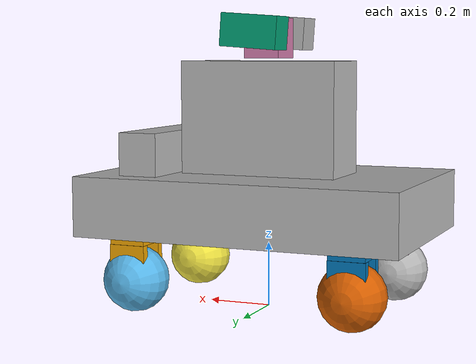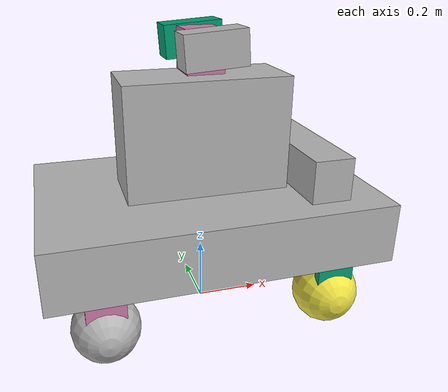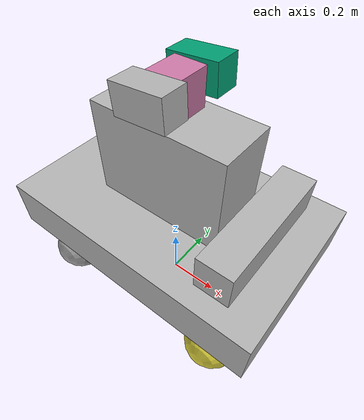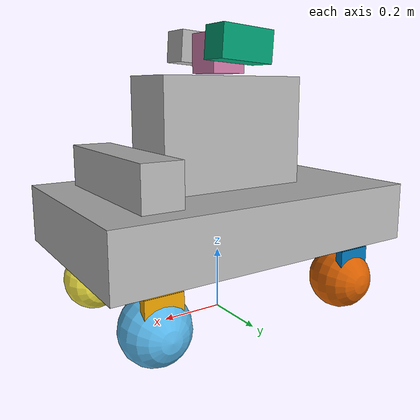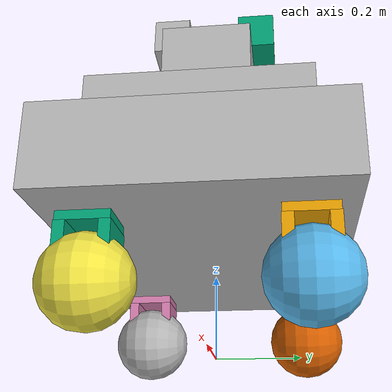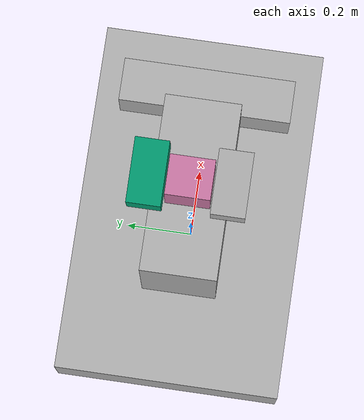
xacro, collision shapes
<?xml version="1.0" ?>
<robot xmlns:xacro="http://www.ros.org/wiki/xacro" name="marinero">

  <xacro:include filename="materials.xacro" />
  <xacro:include filename="imu.xacro" />
  <xacro:include filename="lidar.xacro" />
  <xacro:include filename="marinero_camera.xacro" />
  <xacro:include filename="SUNELL_camera.xacro" />
  <xacro:include filename="robot_core_4WIS4WID.xacro" />

</robot>

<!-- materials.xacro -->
<robot xmlns:xacro="http://www.ros.org/wiki/xacro">

    <xacro:property name="wheel_length" value="0.04" />
    <xacro:property name="wheel_radius" value="0.1016" />
    <xacro:property name="wheel_mass" value="1.469" />
    <xacro:property name="axle_length" value="0.1234" />
    <xacro:property name="axle_radius" value="0.035" />
    <xacro:property name="axle_mass" value="1.5" />

    <material name="white">
        <color rgba="1.0 1.0 1.0 1.0"/>
    </material>

    <material name="grey">
        <color rgba="0.5 0.5 0.5 1.0"/>
    </material>

    <material name="red">
        <color rgba="1.0 0.0 0.0 0.8"/>
    </material>

    <material name="black">
        <color rgba="0.0 0.0 0.0 1.0"/>
    </material>

    <material name="dark">
        <color rgba="0.3 0.3 0.3 1.0"/>
    </material>

    <material name="light_black">
        <color rgba="0.4 0.4 0.4 1.0"/>
    </material>

    <material name="sky_blue">
        <color rgba="${135/255} ${206/255} ${235/255} 1.0"/>
    </material>

    <xacro:macro name="inertial_sphere" params="mass radius *origin">
        <inertial>
            <xacro:insert_block name="origin"/>
            <mass value="${mass}" />
            <inertia ixx="${(2/5) * mass * (radius*radius)}" ixy="0.0" ixz="0.0"
                    iyy="${(2/5) * mass * (radius*radius)}" iyz="0.0"
                    izz="${(2/5) * mass * (radius*radius)}" />
        </inertial>
    </xacro:macro>

    <xacro:macro name="inertial_box" params="mass x y z *origin">
        <inertial>
            <xacro:insert_block name="origin"/>
            <mass value="${mass}" />
            <inertia ixx="${(1/12) * mass * (y*y+z*z)}" ixy="0.0" ixz="0.0"
                    iyy="${(1/12) * mass * (x*x+z*z)}" iyz="0.0"
                    izz="${(1/12) * mass * (x*x+y*y)}" />
        </inertial>
    </xacro:macro>

    <xacro:macro name="inertial_cylinder" params="mass length radius *origin">
        <inertial>
            <xacro:insert_block name="origin"/>
            <mass value="${mass}" />
            <inertia ixx="${(1/12) * mass * (3*radius*radius + length*length)}" ixy="0.0" ixz="0.0"
                    iyy="${(1/12) * mass * (3*radius*radius + length*length)}" iyz="0.0"
                    izz="${(1/2) * mass * (radius*radius)}" />
        </inertial>
    </xacro:macro>

</robot>

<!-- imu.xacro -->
<robot xmlns:xacro="http://www.ros.org/wiki/xacro" name="imu">

    <joint name="imu_joint" type="fixed">
        <parent link="base_link"/>
        <child link="imu_link"/>
        <origin xyz="0 0 0.3" rpy="0 0 0"/>
    </joint>

    <link name="imu_link">
        <visual>
            <origin xyz="0.0 0.0 0.0" rpy="0.0 0.0 0.0"/>
            <geometry>
                <box size="0.1 0.1 0.02" />
            </geometry>
            <material name="grey"/>
        </visual>

        <collision>
            <origin xyz="0.0 0.0 0.0" rpy="0.0 0.0 0.0"/>
            <geometry>
                <box size="0.2 0.2 0.02" />
            </geometry>
        </collision>
    </link>

    <gazebo reference="imu_link">
        <gravity>true</gravity>
        <sensor name="imu_sensor" type="imu">
            <always_on>true</always_on>
            <update_rate>100</update_rate>
            <visualize>true</visualize>
            <imu>
                <angular_velocity>
                    <x>
                    <noise type="gaussian">
                        <mean>0.0</mean>
                        <stddev>0.0001</stddev>
                        <bias_mean>0.0</bias_mean>
                        <bias_stddev>0.0</bias_stddev>
                    </noise>
                    </x>
                    <y>
                    <noise type="gaussian">
                        <mean>0.0</mean>
                        <stddev>0.0001</stddev>
                        <bias_mean>0.0</bias_mean>
                        <bias_stddev>0.0</bias_stddev>
                    </noise>
                    </y>
                    <z>
                    <noise type="gaussian">
                        <mean>0.0</mean>
                        <stddev>0.0001</stddev>
                        <bias_mean>0.0</bias_mean>
                        <bias_stddev>0.0</bias_stddev>
                    </noise>
                    </z>
                </angular_velocity>
                <linear_acceleration>
                    <x>
                    <noise type="gaussian">
                        <mean>0.0</mean>
                        <stddev>0.0001</stddev>
                        <bias_mean>0.0</bias_mean>
                        <bias_stddev>0.0</bias_stddev>
                    </noise>
                    </x>
                    <y>
                    <noise type="gaussian">
                        <mean>0.0</mean>
                        <stddev>0.0001</stddev>
                        <bias_mean>0.0</bias_mean>
                        <bias_stddev>0.0</bias_stddev>
                    </noise>
                    </y>
                    <z>
                    <noise type="gaussian">
                        <mean>0.0</mean>
                        <stddev>0.0001</stddev>
                        <bias_mean>0.0</bias_mean>
                        <bias_stddev>0.0</bias_stddev>
                    </noise>
                    </z>
                </linear_acceleration>
            </imu>

            <plugin filename="libgazebo_ros_imu_sensor.so" name="imu_plugin">
                <ros>
                    <remapping>~/out:=/marinero/imu_sensor</remapping>
                </ros>
                <body_name>base_link</body_name>
                <gaussian_noise>0.005</gaussian_noise>
                <xyz_offset>0 0 0</xyz_offset>
                <rpy_offset>0 0 0</rpy_offset>
                <frame_name>imu_link</frame_name>
                <initial_orientation_as_reference>false</initial_orientation_as_reference>
            </plugin>
            <pose>0 0 0 0 0 0</pose>
        </sensor>
    </gazebo>

    <joint name="gps_joint" type="fixed">
        <parent link="base_link"/>
        <child link="gps_link"/>
        <origin xyz="0 0 0.32" rpy="0 0 0"/>
    </joint>

    <link name="gps_link">
        <visual>
            <origin xyz="0.0 0.0 0.0" rpy="0.0 0.0 0.0"/>
            <geometry>
                <box size="0.1 0.1 0.02" />
            </geometry>
            <material name="white"/>
        </visual>

        <collision>
            <origin xyz="0.0 0.0 0.0" rpy="0.0 0.0 0.0"/>
            <geometry>
                <box size="0.2 0.2 0.02" />
            </geometry>
        </collision>
    </link>

    <gazebo reference="gps_link">
        <sensor name="gps_sensor" type="gps">
            <always_on>true</always_on>
            <update_rate>10</update_rate>
            <plugin name="my_gps_plugin" filename="libgazebo_ros_gps_sensor.so">
                <ros>
                    <remapping>~/out:=/marinero/gps_sensor</remapping>
                </ros>
            </plugin>
        </sensor>
    </gazebo>

</robot>

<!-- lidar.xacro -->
<robot xmlns:xacro="http://www.ros.org/wiki/xacro">

    <xacro:property name="lidar_length" value="0.05" />
    <xacro:property name="lidar_radius" value="0.05" />

    <!-- FRONT LIDAR DESCRIPTION -->
    <joint name="front_lidar_joint" type="fixed">
        <origin xyz="0.455 0.0 0.38" rpy="0.0 0.0 0.0" />
        <parent link="base_link"/>
        <child link="front_lidar_link"/>
    </joint>

    <link name="front_lidar_link"></link>

    <joint name="front_lidar_2D_joint" type="fixed">
        <origin xyz="0.0 0.0 0.0" rpy="0.0 0.0 0.0"/>
        <parent link="front_lidar_link"/>
        <child link="front_lidar_2D_link"/>
    </joint>

    <link name="front_lidar_2D_link"></link>

    <joint name="front_lidar_3D_joint" type="fixed">
        <origin xyz="0.0 0.0 0.0" rpy="0.0 0.0 0.0"/>
        <parent link="front_lidar_link"/>
        <child link="front_lidar_3D_link"/>
    </joint>

    <link name="front_lidar_3D_link"></link>

    <!-- REAR LIDAR DESCRIPTION -->
    <joint name="rear_lidar_joint" type="fixed">
        <origin xyz="-0.455 0.0 0.38" rpy="0 0 ${pi}" />
        <parent link="base_link"/>
        <child link="rear_lidar_link"/>
    </joint>

    <link name="rear_lidar_link"></link>

    <joint name="rear_lidar_2D_joint" type="fixed">
        <origin xyz="0.0 0.0 0.0" rpy="0.0 0.0 0.0"/>
        <parent link="rear_lidar_link"/>
        <child link="rear_lidar_2D_link"/>
    </joint>

    <link name="rear_lidar_2D_link"></link>

    <joint name="rear_lidar_3D_joint" type="fixed">
        <origin xyz="0.0 0.0 0.0" rpy="0.0 0.0 0.0"/>
        <parent link="rear_lidar_link"/>
        <child link="rear_lidar_3D_link"/>
    </joint>

    <link name="rear_lidar_3D_link"></link>

    <!-- FRONT 3D LIDAR -->

    <gazebo reference="front_lidar_3D_link">
        <sensor name="front_3D_lidar" type="gpu_ray">
            <pose>0 0 0 0 0 0</pose>
            <update_rate>10.0</update_rate>
            <visualize>false</visualize>
            <ray>
                <scan>
                    <horizontal>
                        <samples>360</samples>
                        <resolution>1.0</resolution>
                        <min_angle>${-pi/2.1}</min_angle>
                        <max_angle>${pi/2.1}</max_angle>
                    </horizontal>
                    <vertical>
                        <samples>180</samples>
                        <resolution>1.0</resolution>
                        <min_angle>${-pi/16}</min_angle>
                        <max_angle>${pi/2}</max_angle>
                    </vertical>
                </scan>
                <range>
                    <min>0.25</min>
                    <max>10.0</max>
                    <resolution>0.001</resolution>
                </range>
            </ray>
            <plugin name="front_laser_3D_plugin" filename="libgazebo_ros_ray_sensor.so">
                <ros>
                    <remapping>~/out:=/lidar_3D/front_scan</remapping>
                </ros>
                <update_rate>10.0</update_rate>
                <output_type>sensor_msgs/PointCloud2</output_type>
                <frame_name>front_lidar_3D_link</frame_name>
            </plugin>
        </sensor>
    </gazebo>

    <!-- >REAR 3D LIDAR -->

    <!-- FRONT 2D LIDAR -->

    <gazebo reference="front_lidar_2D_link">
        <sensor name="front_2D_lidar" type="gpu_ray">
            <pose> 0 0 0 0 0 0 </pose>
            <update_rate>10.0</update_rate>
            <visualize>false</visualize>
            <ray>
                <scan>
                    <horizontal>
                        <samples>720</samples>
                        <resolution>1</resolution>
                        <min_angle>-1.57</min_angle>
                        <max_angle>1.57</max_angle>
                    </horizontal>
                </scan>
                <range>
                    <min>0.25</min>
                    <max>10</max>
                    <resolution>0.01</resolution>
                </range>
            </ray>
            <plugin name="front_laser_2D_plugin" filename="libgazebo_ros_ray_sensor.so">
                <ros>
                    <remapping>~/out:=/front_scan</remapping>
                </ros>
                <update_rate>10.0</update_rate>
                <output_type>sensor_msgs/LaserScan</output_type>
                <frame_name>front_lidar_2D_link</frame_name>
            </plugin>
        </sensor>
    </gazebo>

    <!-- REAR 2D LIDAR -->

    <gazebo reference="rear_lidar_2D_link">
        <sensor name="rear_2D_lidar" type="gpu_ray">
            <pose> 0 0 0 0 0 0 </pose>
            <update_rate>10.0</update_rate>
            <visualize>false</visualize>
            <ray>
                <scan>
                    <horizontal>
                        <samples>720</samples>
                        <resolution>1</resolution>
                        <min_angle>-1.57</min_angle>
                        <max_angle>1.57</max_angle>
                    </horizontal>
                </scan>
                <range>
                    <min>0.25</min>
                    <max>10</max>
                    <resolution>0.01</resolution>
                </range>
            </ray>
            <plugin name="rear_laser_2D_plugin" filename="libgazebo_ros_ray_sensor.so">
                <ros>
                    <remapping>~/out:=/rear_scan</remapping>
                </ros>
                <update_rate>10.0</update_rate>
                <output_type>sensor_msgs/LaserScan</output_type>
                <frame_name>rear_lidar_2D_link</frame_name>
            </plugin>
        </sensor>
    </gazebo>

</robot>

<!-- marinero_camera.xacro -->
<robot xmlns:xacro="http://www.ros.org/wiki/xacro" name="camera">

    <!-- FRONT CAMERA -->

    <joint name="front_camera_base_joint" type="fixed">
        <origin xyz="0.502 0 0.069825" rpy="0 0 0" />
        <parent link="chassis" />
        <child link="front_camera_link" />
    </joint>

    <link name="front_camera_link"></link>

    <joint name="front_camera_center" type="fixed">
        <origin xyz="0 0 0" rpy="0 0 0"/>
        <parent link="front_camera_link"/>
        <child link="front_camera_center_link"/>
    </joint>

    <link name="front_camera_center_link"></link>

    <joint name="front_camera_depth_joint" type="fixed">
        <origin xyz="0 0 0" rpy="-${pi/2} 0 -${pi/2}"/>
        <parent link="front_camera_center_link"/>
        <child link="front_camera_depth_frame"/>
    </joint>

    <link name="front_camera_depth_frame"></link>

    <!-- REAR CAMERA -->

    <joint name="rear_camera_joint" type="fixed">
        <origin xyz="-0.502 0 0.069825" rpy="0 0 ${pi}" />
        <parent link="chassis" />
        <child link="rear_camera_link" />
    </joint>

    <link name="rear_camera_link"></link>

    <joint name="rear_camera_center" type="fixed">
        <origin xyz="0 0 0" rpy="0 0 0"/>
        <parent link="rear_camera_link"/>
        <child link="rear_camera_center_link"/>
    </joint>

    <link name="rear_camera_center_link"></link>

    <joint name="rear_camera_depth_joint" type="fixed">
        <origin xyz="0 0 0" rpy="-${pi/2} 0 -${pi/2}"/>
        <parent link="rear_camera_center_link"/>
        <child link="rear_camera_depth_frame"/>
    </joint>

    <link name="rear_camera_depth_frame"></link>

    <!-- GAZEBO PLUGINS -->

    <gazebo reference="front_camera_center_link">
        <sensor name="front_depth_camera" type="camera">
            <update_rate>20</update_rate>
            <visualize>false</visualize>
            <camera name="front_cam">
                <horizontal_fov>1.3962634</horizontal_fov>
                <image>
                    <width>640</width>
                    <height>480</height>
                    <format>B8G8R8</format>
                </image>
                <clip>
                    <near>0.1</near>
                    <far>20</far>
                </clip>
            </camera>
            <plugin name="front_camera_controller" filename="libgazebo_ros_camera.so">
                <frame_name>front_camera_depth_frame</frame_name>
                <imageTopicName>camera/image_front</imageTopicName>
                <min_depth>0.1</min_depth>
                <max_depth>20</max_depth>
            </plugin>
        </sensor>
    </gazebo>

    <gazebo reference="rear_camera_center_link">
        <sensor name="rear_depth_camera" type="camera">
            <update_rate>20</update_rate>
            <visualize>false</visualize>
            <camera name="rear_cam">
                <horizontal_fov>1.3962634</horizontal_fov>
                <image>
                    <width>640</width>
                    <height>480</height>
                    <format>B8G8R8</format>
                </image>
                <clip>
                    <near>0.1</near>
                    <far>20</far>
                </clip>
            </camera>
            <plugin name="rear_camera_controller" filename="libgazebo_ros_camera.so">
                <frame_name>rear_camera_depth_frame</frame_name>
                <imageTopicName>camera/image_rear</imageTopicName>
                <min_depth>0.1</min_depth>
                <max_depth>20</max_depth>
            </plugin>
        </sensor>
    </gazebo>

</robot>

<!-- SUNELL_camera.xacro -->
<robot xmlns:xacro="http://www.ros.org/wiki/xacro" name="camera">

    <joint name="camera_base_joint" type="revolute">
        <origin xyz="0.0 0.0 0.5415" rpy="0.0 0.0 0.0" />
        <parent link="chassis" />
        <child link="camera_base" />
        <axis xyz="0 0 1" />
        <limit
            upper="${pi}"
            lower="-${pi}"
            effort="100"
            velocity="100" />
        <dynamics damping="10.0" friction="5.0" />
    </joint>

    <link name="camera_base">
        <visual>
            <origin xyz="0.0 0.0 0.0" rpy="0.0 0.0 0.0"/>
            <geometry>
                <mesh filename="package://marinero_simulations/robot_description/meshes/SUNELL_camera_base.dae" scale="1.0 1.0 1.0"/>
            </geometry>
        </visual>

        <collision>
            <origin xyz="0.0 0.002 0.0615"/>
            <geometry>
                <box size="0.112 0.125 0.124"/>
            </geometry>
        </collision>

        <inertial>
            <origin xyz="-0.00136 0.003545 0.06308" rpy="0 0 0"/>
            <mass value="1.65" />
            <inertia ixx="0.00636" ixy="0.0" ixz="0.0"
                    iyx="0.0" iyy="0.00485" iyz="0.0"
                    izx="0.0" izy="0.0" izz="0.0049" />
        </inertial>
    </link>

    <!-- RIGHT CAMERA -->

    <joint name="right_camera_joint" type="revolute">
        <origin xyz="0.0 -0.0605 0.093" rpy="0.0 0.0 ${pi/2}" />
        <parent link="camera_base" />
        <child link="right_camera_link" />
        <axis xyz="1 0 0" />
        <limit
            upper="2.0"
            lower="1.0"
            effort="100"
            velocity="100" />
        <dynamics damping="10.0" friction="10.0" />
    </joint>

    <link name="right_camera_link">
        <visual>
            <origin xyz="0.0 0.0 0.0" rpy="0.0 0 0.0"/>
            <geometry>
                <mesh filename="package://marinero_simulations/robot_description/meshes/SUNELL_right_camera.dae" scale="1.0 1.0 1.0"/>
            </geometry>
        </visual>

        <collision>
            <origin xyz="-0.052 -0.0125 0.0" rpy="0.0 0 0.0"/>
            <geometry>
                <box size="0.095 0.1 0.18"/>
            </geometry>
        </collision>

        <inertial>
            <origin xyz="-0.05144 -0.01752 0.0129" rpy="0.0 0 0.0"/>
            <mass value="1.65" />
            <inertia ixx="0.00438" ixy="0.0" ixz="0.0"
                    iyx="0.0" iyy="0.00423" iyz="0.0"
                    izx="0.0" izy="0.0" izz="0.00199" />
        </inertial>
    </link>

    <joint name="right_camera_center" type="fixed">
        <origin xyz="-0.052 -0.0195 0.0885" rpy="0.0 ${-pi/2} ${-pi/2}"/>
        <parent link="right_camera_link"/>
        <child link="right_camera_center_link"/>
    </joint>

    <link name="right_camera_center_link"></link>

    <joint name="right_camera_depth_joint" type="fixed">
        <origin xyz="0.0 0.0 0.0" rpy="${-pi/2} 0 ${-pi/2}"/>
        <parent link="right_camera_center_link"/>
        <child link="right_camera_depth_frame"/>
    </joint>

    <link name="right_camera_depth_frame"></link>

    <!-- LEFT CAMERA -->

    <joint name="left_camera_joint" type="revolute">
        <origin xyz="0.0 0.0645 0.093" rpy="0.0 0.0 ${pi/2}" />
        <parent link="camera_base" />
        <child link="left_camera_link" />
        <axis xyz="1 0 0" />
        <limit
            upper="2.0"
            lower="1.0"
            effort="100"
            velocity="100" />
        <dynamics damping="10.0" friction="5.0" />
    </joint>

    <link name="left_camera_link">
        <visual>
            <origin xyz="0.0 0.0 0.0" rpy="0.0 0 0.0"/>
            <geometry>
                <mesh filename="package://marinero_simulations/robot_description/meshes/SUNELL_left_camera.dae" scale="1.0 1.0 1.0"/>
            </geometry>
        </visual>

        <collision>
            <origin xyz="0.052 -0.0125 0.0" rpy="0.0 0 0.0"/>
            <geometry>
                <box size="0.095 0.1 0.18"/>
            </geometry>
        </collision>

        <inertial>
            <origin xyz="0.05252 -0.01726 -0.01762" rpy="0.0 0 0.0"/>
            <mass value="1.65" />
            <inertia ixx="0.0052" ixy="0.0" ixz="0.0"
                    iyx="0.0" iyy="0.0051" iyz="0.0"
                    izx="0.0" izy="0.0" izz="0.0024" />
        </inertial>
    </link>

    <joint name="left_camera_center" type="fixed">
        <origin xyz="0.056 -0.0215 0.0895" rpy="0.0 ${-pi/2} ${-pi/2}"/>
        <parent link="left_camera_link"/>
        <child link="left_camera_center_link"/>
    </joint>

    <link name="left_camera_center_link"></link>

    <joint name="left_camera_depth_joint" type="fixed">
        <origin xyz="0.0 0.0 0.0" rpy="${-pi/2} 0.0 ${-pi/2}"/>
        <parent link="left_camera_center_link"/>
        <child link="left_camera_depth_frame"/>
    </joint>

    <link name="left_camera_depth_frame"></link>

    <!-- GAZEBO PLUGINS -->

    <gazebo reference="right_camera_center_link">
        <sensor name="right_depth_camera" type="depth">
            <update_rate>20</update_rate>
            <visualize>false</visualize>
            <camera name="right_dep_cam">
                <horizontal_fov>1.3962634</horizontal_fov>
                <image>
                    <width>640</width>
                    <height>480</height>
                    <format>B8G8R8</format>
                </image>
                <clip>
                    <near>0.05</near>
                    <far>20</far>
                </clip>
            </camera>
            <plugin name="right_camera_controller" filename="libgazebo_ros_camera.so">
                <frame_name>right_camera_depth_frame</frame_name>
                <update_rate>20</update_rate>
                <min_depth>0.05</min_depth>
                <max_depth>20</max_depth>
            </plugin>
        </sensor>
    </gazebo>

</robot>

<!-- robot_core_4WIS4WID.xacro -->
<robot xmlns:xacro="http://www.ros.org/wiki/xacro">

    <link name="base_link"></link>

    <joint name="base_footprint_joint" type="fixed">
        <origin xyz="0.0 0.0 0.0" rpy="0.0 0.0 0.0"/>
        <parent link="base_link"/>
        <child link="base_footprint"/>
    </joint>

    <link name="base_footprint"></link>

    <joint name="chassis_joint" type="fixed">
        <origin xyz="0.0 0.0 0.237" rpy="0 0 0"/>
        <parent link="base_link" />
        <child link="chassis" />
    </joint>

    <link name="chassis">
        <visual>
            <origin xyz="0.0 0.0 0.0" />
            <geometry>
                <mesh filename="package://marinero_simulations/robot_description/meshes/MARINERO_chassis_FINAL.dae" scale="1.0 1.0 1.0" />
            </geometry>
        </visual>

        <collision>
            <origin xyz="0.0 0.0 0.0915" />
            <geometry>
                <box size="1.025 0.65 0.185"/>
            </geometry>
        </collision>
        <collision>
            <origin xyz="0.0 0.0 0.358"/>
            <geometry>
                    <box size="0.5 0.215 0.350"/>
            </geometry>
        </collision>
        <collision>
            <origin xyz="0.330 0.0 0.25" rpy="0 0 0"/>
            <geometry>
                    <box size="0.125 0.5 0.132"/>
            </geometry>
        </collision>

        <inertial>
            <mass value="40.0" />
            <origin xyz="0.01906 -0.00077 0.13293" />
            <inertia ixx="3.3132" ixy="0.00935" ixz="-0.0373"
                    iyx="0.00935" iyy="5.232" iyz="-0.01586"
                    izx="-0.0373" izy="-0.01586" izz="4.562" />
        </inertial>
    </link>

    <!-- FRONT LEFT WHEEL -->

    <joint name="fl_rotation_joint" type="revolute">
        <origin xyz="0.35 0.225 ${wheel_radius + 0.132}" rpy="0 0 0"/>
        <parent link="base_link" />
        <child link="fl_axle_link" />
        <axis xyz="0 0 1" />
        <limit
            upper="${pi/2}"
            lower="-${pi/2}"
            effort="50"
            velocity="50" />
        <dynamics friction="0.5" />
    </joint>

    <link name="fl_axle_link">
        <visual>
            <origin xyz="0 0 0" rpy="0 0 0"/>
            <geometry>
                <mesh filename="package://marinero_simulations/robot_description/meshes/Wheel_Assembly_FINAL.dae" scale="1.0 1.0 1.0" />
            </geometry>
        </visual>

        <collision>
            <origin xyz="0.0 0.0 -0.01" rpy="0 0 0"/>
            <geometry>
                    <box size="0.112 0.115 0.02"/>
            </geometry>
        </collision>
        <collision>
            <origin xyz="0.0 0.0465 -0.08" rpy="0 0 0"/>
            <geometry>
                    <box size="0.115 0.025 0.12"/>
            </geometry>
        </collision>
        <collision>
            <origin xyz="0.0 -0.0465 -0.08" rpy="0 0 0"/>
            <geometry>
                    <box size="0.115 0.025 0.12"/>
            </geometry>
        </collision>

        <inertial>
            <origin xyz="0.0 0.0 -0.04412" rpy="0.0 0.0 0.0" />
            <mass value="2.5" />
            <inertia ixx="0.01468" ixy="0.0" ixz="0.0"
                    iyx="0.0" iyy="0.01245" iyz="0.0"
                    izx="0.0" izy="0.0" izz="0.00671" />
        </inertial>
    </link>

    <joint name="fl_wheel_joint" type="continuous">
        <origin xyz="0 0 -0.132" rpy="-${pi/2} 0 0"/>
        <parent link="fl_axle_link" />
        <child link="fl_wheel" />
        <limit effort="10" velocity="30"/>
        <axis xyz="0 0 1" />
        <dynamics friction="2.0"/>
    </joint>

    <link name="fl_wheel">
        <visual>
            <origin xyz="0 0 0" rpy="0 0 0"/>
            <geometry>
                <mesh filename="package://marinero_simulations/robot_description/meshes/Wheel_FINAL.dae" scale="1.0 1.0 1.0" />
            </geometry>
        </visual>

        <collision>
            <origin xyz="0 0 0" rpy="0 0 0"/>
            <geometry>
                <sphere radius="${wheel_radius}"/>
            </geometry>
        </collision>

        <inertial>
            <mass value="1.469" />
            <origin xyz="0.0 0.0 0.0" rpy="0.0 0.0 0.0" />
            <inertia ixx="0.003638" ixy="0.0" ixz="0.0"
                    iyx="0.0" iyy="0.00364" iyz="0.0"
                    izx="0.0" izy="0.0" izz="0.006634" />
        </inertial>
    </link>

<!-- FRONT RIGHT WHEEL -->

    <joint name="fr_rotation_joint" type="revolute">
        <origin xyz="0.35 -0.225 ${wheel_radius + 0.132}" rpy="0 0 0" />
        <parent link="base_link" />
        <child link="fr_axle_link" />
        <axis xyz="0 0 1" />
        <limit
            upper="${pi/2}"
            lower="-${pi/2}"
            effort="50"
            velocity="50" />
        <dynamics friction="0.5"/>
    </joint>

    <link name="fr_axle_link">
        <visual>
            <origin xyz="0 0 0" rpy="0 0 0"/>
            <geometry>
                <mesh filename="package://marinero_simulations/robot_description/meshes/Wheel_Assembly_FINAL.dae" scale="1.0 1.0 1.0" />
            </geometry>
        </visual>

        <collision>
            <origin xyz="0.0 0.0 -0.01" rpy="0 0 0"/>
            <geometry>
                    <box size="0.112 0.115 0.02"/>
            </geometry>
        </collision>
        <collision>
            <origin xyz="0.0 0.0465 -0.08" rpy="0 0 0"/>
            <geometry>
                    <box size="0.115 0.025 0.12"/>
            </geometry>
        </collision>
        <collision>
            <origin xyz="0.0 -0.0465 -0.08" rpy="0 0 0"/>
            <geometry>
                    <box size="0.115 0.025 0.12"/>
            </geometry>
        </collision>

        <inertial>
            <origin xyz="0.0 0.0 -0.04412" rpy="0.0 0.0 0.0" />
            <mass value="2.5" />
            <inertia ixx="0.01468" ixy="0.0" ixz="0.0"
                    iyx="0.0" iyy="0.01245" iyz="0.0"
                    izx="0.0" izy="0.0" izz="0.00671" />
        </inertial>
    </link>

    <joint name="fr_wheel_joint" type="continuous">
        <origin xyz="0 0 -0.132" rpy="${pi/2} 0 0"/>
        <parent link="fr_axle_link" />
        <child link="fr_wheel" />
        <limit effort="10" velocity="30"/>
        <axis xyz="0 0 -1" />
        <dynamics friction="2.0"/>
    </joint>

    <link name="fr_wheel">
        <visual>
            <origin xyz="0 0 0" rpy="0 0 0"/>
            <geometry>
                <mesh filename="package://marinero_simulations/robot_description/meshes/Wheel_FINAL.dae" scale="1.0 1.0 1.0" />
            </geometry>
        </visual>

        <collision>
            <origin xyz="0 0 0" rpy="0 0 0"/>
            <geometry>
                <sphere radius="${wheel_radius}"/>
            </geometry>
        </collision>

        <inertial>
            <mass value="1.469" />
            <origin xyz="0.0 0.0 0.0" rpy="0.0 0.0 0.0" />
            <inertia ixx="0.003638" ixy="0.0" ixz="0.0"
                    iyx="0.0" iyy="0.00364" iyz="0.0"
                    izx="0.0" izy="0.0" izz="0.006634" />
        </inertial>
    </link>

    <!-- REAR LEFT WHEEL -->

    <joint name="rl_rotation_joint" type="revolute">
        <origin xyz="-0.35 0.225 ${wheel_radius + 0.132}" rpy="0 0 0"/>
        <parent link="base_link" />
        <child link="rl_axle_link" />
        <axis xyz="0 0 1" />
        <limit
            upper="${pi/2}"
            lower="-${pi/2}"
            effort="50"
            velocity="50" />
        <dynamics friction="0.5"/>
    </joint>

    <link name="rl_axle_link">
        <visual>
            <origin xyz="0 0 0" rpy="0 0 0"/>
            <geometry>
                <mesh filename="package://marinero_simulations/robot_description/meshes/Wheel_Assembly_FINAL.dae"  scale="1.0 1.0 1.0" />
            </geometry>
        </visual>

        <collision>
            <origin xyz="0.0 0.0 -0.01" rpy="0 0 0"/>
            <geometry>
                    <box size="0.112 0.115 0.02"/>
            </geometry>
        </collision>
        <collision>
            <origin xyz="0.0 0.0465 -0.08" rpy="0 0 0"/>
            <geometry>
                    <box size="0.115 0.025 0.12"/>
            </geometry>
        </collision>
        <collision>
            <origin xyz="0.0 -0.0465 -0.08" rpy="0 0 0"/>
            <geometry>
                    <box size="0.115 0.025 0.12"/>
            </geometry>
        </collision>

        <inertial>
            <origin xyz="0.0 0.0 -0.04412" rpy="0.0 0.0 0.0" />
            <mass value="2.5" />
            <inertia ixx="0.01468" ixy="0.0" ixz="0.0"
                    iyx="0.0" iyy="0.01245" iyz="0.0"
                    izx="0.0" izy="0.0" izz="0.00671" />
        </inertial>
    </link>

    <joint name="rl_wheel_joint" type="continuous">
        <origin xyz="0 0 -0.132" rpy="-${pi/2} 0 0"/>
        <parent link="rl_axle_link" />
        <child link="rl_wheel" />
        <limit effort="10" velocity="30"/>
        <axis xyz="0 0 1" />
        <dynamics friction="2.0"/>
    </joint>

    <link name="rl_wheel">
        <visual>
            <origin xyz="0 0 0" rpy="0 0 0"/>
            <geometry>
                <mesh filename="package://marinero_simulations/robot_description/meshes/Wheel_FINAL.dae" scale="1.0 1.0 1.0" />
            </geometry>
        </visual>

        <collision>
            <origin xyz="0 0 0" rpy="0 0 0"/>
            <geometry>
                <sphere radius="${wheel_radius}"/>
            </geometry>
        </collision>

        <inertial>
            <mass value="1.469" />
            <origin xyz="0.0 0.0 0.0" rpy="0.0 0.0 0.0" />
            <inertia ixx="0.003638" ixy="0.0" ixz="0.0"
                    iyx="0.0" iyy="0.00364" iyz="0.0"
                    izx="0.0" izy="0.0" izz="0.006634" />
        </inertial>
    </link>

    <!-- REAR RIGHT WHEEL -->

    <joint name="rr_rotation_joint" type="revolute">
        <origin xyz="-0.35 -0.225 ${wheel_radius + 0.132}" rpy="0 0 0" />
        <parent link="base_link" />
        <child link="rr_axle_link" />
        <axis xyz="0 0 1" />
        <limit
            upper="${pi/2}"
            lower="-${pi/2}"
            effort="50"
            velocity="50" />
        <dynamics friction="0.5"/>
    </joint>

    <link name="rr_axle_link">
        <visual>
            <origin xyz="0 0 0" rpy="0 0 0"/>
            <geometry>
                <mesh filename="package://marinero_simulations/robot_description/meshes/Wheel_Assembly_FINAL.dae"  scale="1.0 1.0 1.0" />
            </geometry>
        </visual>

        <collision>
            <origin xyz="0.0 0.0 -0.01" rpy="0 0 0"/>
            <geometry>
                    <box size="0.112 0.115 0.02"/>
            </geometry>
        </collision>
        <collision>
            <origin xyz="0.0 0.0465 -0.08" rpy="0 0 0"/>
            <geometry>
                    <box size="0.115 0.025 0.12"/>
            </geometry>
        </collision>
        <collision>
            <origin xyz="0.0 -0.0465 -0.08" rpy="0 0 0"/>
            <geometry>
                    <box size="0.115 0.025 0.12"/>
            </geometry>
        </collision>

        <inertial>
            <origin xyz="0.0 0.0 -0.04412" rpy="0.0 0.0 0.0" />
            <mass value="2.5" />
            <inertia ixx="0.01468" ixy="0.0" ixz="0.0"
                    iyx="0.0" iyy="0.01245" iyz="0.0"
                    izx="0.0" izy="0.0" izz="0.00671" />
        </inertial>
    </link>

    <joint name="rr_wheel_joint" type="continuous">
        <origin xyz="0 0 -0.132" rpy="${pi/2} 0 0" />
        <parent link="rr_axle_link" />
        <child link="rr_wheel" />
        <limit effort="10" velocity="30"/>
        <axis xyz="0 0 -1" />
        <dynamics friction="2.0"/>
    </joint>

    <link name="rr_wheel">
        <visual>
            <origin xyz="0 0 0" rpy="0 0 0"/>
            <geometry>
                <mesh filename="package://marinero_simulations/robot_description/meshes/Wheel_FINAL.dae" scale="1.0 1.0 1.0" />
            </geometry>
        </visual>

        <collision>
            <origin xyz="0 0 0" rpy="0 0 0"/>
            <geometry>
                <sphere radius="${wheel_radius}"/>
            </geometry>
        </collision>

        <inertial>
            <mass value="1.469" />
            <origin xyz="0.0 0.0 0.0" rpy="0.0 0.0 0.0" />
            <inertia ixx="0.003638" ixy="0.0" ixz="0.0"
                    iyx="0.0" iyy="0.00364" iyz="0.0"
                    izx="0.0" izy="0.0" izz="0.006634" />
        </inertial>
    </link>

</robot>
